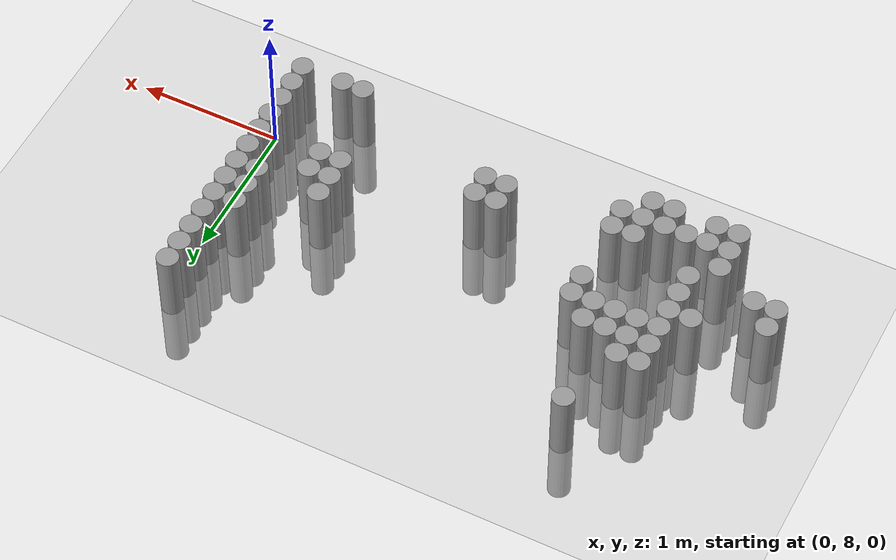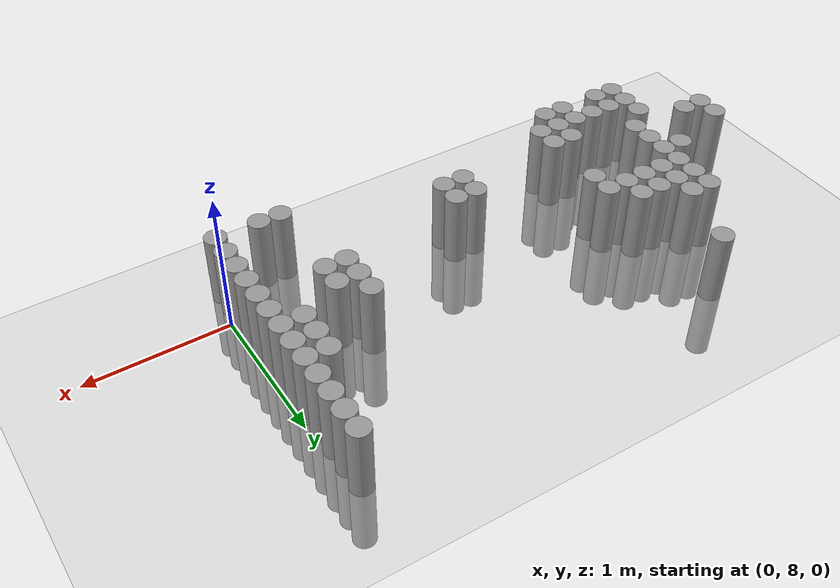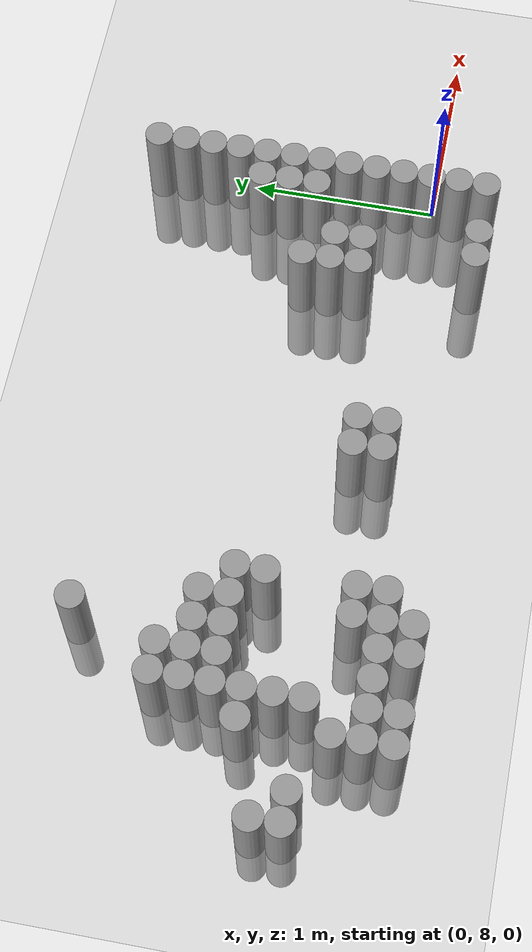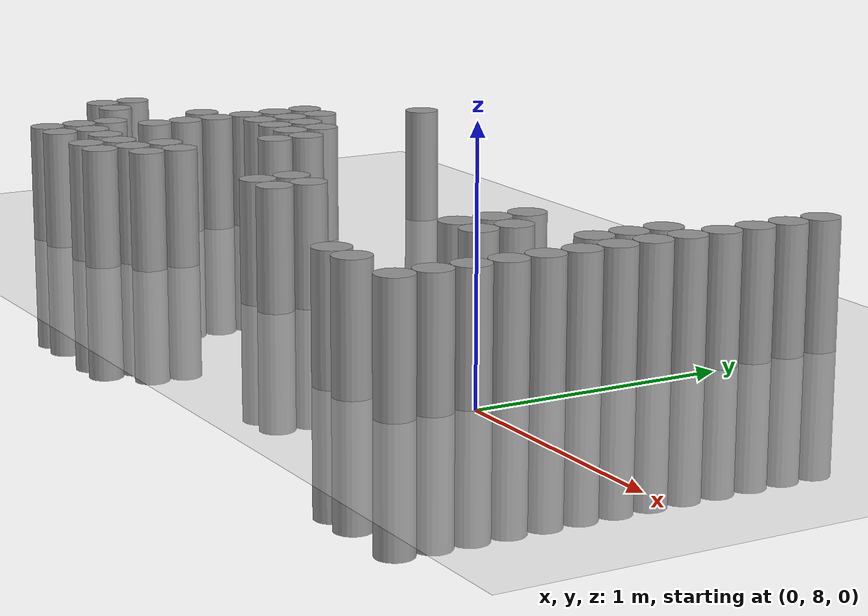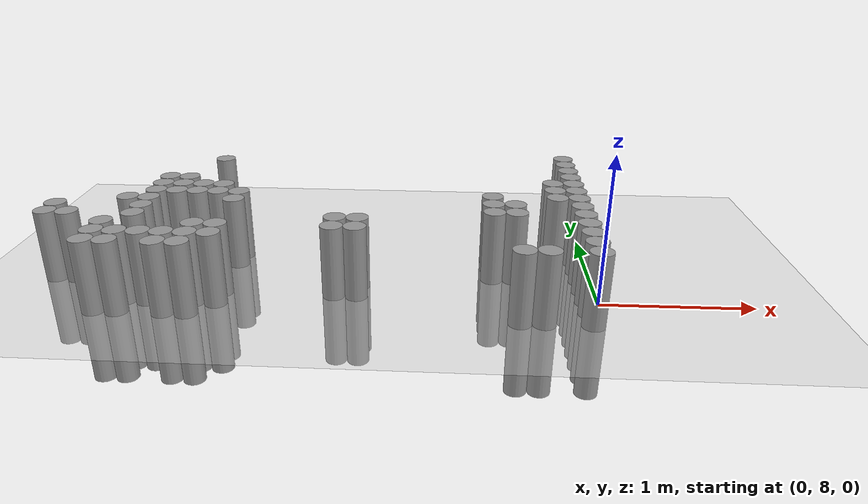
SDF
<sdf version="1.6">
 <world name="default">
  <model name="ground_plane">
   <static>1</static>
   <static>1</static>
   <link name="link">
    <collision name="collision">
     <geometry><plane><normal>0 0 1</normal><size>100 100</size></plane></geometry>
     <surface><friction><ode><mu>100000</mu><mu2>50000</mu2></ode></friction></surface>
    </collision>
    <visual name="visual">
     <cast_shadows>0</cast_shadows>
     <geometry><plane><normal>0 0 1</normal><size>100 100</size></plane></geometry>
     <material>
      <script><uri>file://media/materials/scripts/gazebo.material</uri><name>Gazebo/Grey</name></script>
     </material>
    </visual>
   </link>
  </model>
  <model name="unit_cylinder_165">
   <static>1</static>
   <pose>-3.675000 8.175000 0.000000 0.000000 0.000000 0.000000</pose>
   <link name="link">
    <inertial>
     <mass>1</mass>
     <inertia><ixx>0.145833</ixx><ixy>0</ixy><ixz>0</ixz><iyy>0.145833</iyy><iyz>0</iyz><izz>0.125</izz></inertia>
    </inertial>
    <collision name="collision">
     <geometry><cylinder><radius>0.075000</radius><length>1</length></cylinder></geometry>
    </collision>
    <visual name="visual">
     <geometry><cylinder><radius>0.075000</radius><length>1</length></cylinder></geometry>
     <material>
      <script><name>Gazebo/Grey</name><uri>file://media/materials/scripts/gazebo.material</uri></script>
     </material>
    </visual>
   </link>
  </model>
  <model name="unit_cylinder_166">
   <static>1</static>
   <pose>-3.675000 8.325000 0.000000 0.000000 0.000000 0.000000</pose>
   <link name="link">
    <inertial>
     <mass>1</mass>
     <inertia><ixx>0.145833</ixx><ixy>0</ixy><ixz>0</ixz><iyy>0.145833</iyy><iyz>0</iyz><izz>0.125</izz></inertia>
    </inertial>
    <collision name="collision">
     <geometry><cylinder><radius>0.075000</radius><length>1</length></cylinder></geometry>
    </collision>
    <visual name="visual">
     <geometry><cylinder><radius>0.075000</radius><length>1</length></cylinder></geometry>
     <material>
      <script><name>Gazebo/Grey</name><uri>file://media/materials/scripts/gazebo.material</uri></script>
     </material>
    </visual>
   </link>
  </model>
  <model name="unit_cylinder_168">
   <static>1</static>
   <pose>-3.525000 8.175000 0.000000 0.000000 0.000000 0.000000</pose>
   <link name="link">
    <inertial>
     <mass>1</mass>
     <inertia><ixx>0.145833</ixx><ixy>0</ixy><ixz>0</ixz><iyy>0.145833</iyy><iyz>0</iyz><izz>0.125</izz></inertia>
    </inertial>
    <collision name="collision">
     <geometry><cylinder><radius>0.075000</radius><length>1</length></cylinder></geometry>
    </collision>
    <visual name="visual">
     <geometry><cylinder><radius>0.075000</radius><length>1</length></cylinder></geometry>
     <material>
      <script><name>Gazebo/Grey</name><uri>file://media/materials/scripts/gazebo.material</uri></script>
     </material>
    </visual>
   </link>
  </model>
  <model name="unit_cylinder_172">
   <static>1</static>
   <pose>-3.225000 7.725000 0.000000 0.000000 0.000000 0.000000</pose>
   <link name="link">
    <inertial>
     <mass>1</mass>
     <inertia><ixx>0.145833</ixx><ixy>0</ixy><ixz>0</ixz><iyy>0.145833</iyy><iyz>0</iyz><izz>0.125</izz></inertia>
    </inertial>
    <collision name="collision">
     <geometry><cylinder><radius>0.075000</radius><length>1</length></cylinder></geometry>
    </collision>
    <visual name="visual">
     <geometry><cylinder><radius>0.075000</radius><length>1</length></cylinder></geometry>
     <material>
      <script><name>Gazebo/Grey</name><uri>file://media/materials/scripts/gazebo.material</uri></script>
     </material>
    </visual>
   </link>
  </model>
  <model name="unit_cylinder_173">
   <static>1</static>
   <pose>-3.225000 7.875000 0.000000 0.000000 0.000000 0.000000</pose>
   <link name="link">
    <inertial>
     <mass>1</mass>
     <inertia><ixx>0.145833</ixx><ixy>0</ixy><ixz>0</ixz><iyy>0.145833</iyy><iyz>0</iyz><izz>0.125</izz></inertia>
    </inertial>
    <collision name="collision">
     <geometry><cylinder><radius>0.075000</radius><length>1</length></cylinder></geometry>
    </collision>
    <visual name="visual">
     <geometry><cylinder><radius>0.075000</radius><length>1</length></cylinder></geometry>
     <material>
      <script><name>Gazebo/Grey</name><uri>file://media/materials/scripts/gazebo.material</uri></script>
     </material>
    </visual>
   </link>
  </model>
  <model name="unit_cylinder_174">
   <static>1</static>
   <pose>-3.225000 8.025000 0.000000 0.000000 0.000000 0.000000</pose>
   <link name="link">
    <inertial>
     <mass>1</mass>
     <inertia><ixx>0.145833</ixx><ixy>0</ixy><ixz>0</ixz><iyy>0.145833</iyy><iyz>0</iyz><izz>0.125</izz></inertia>
    </inertial>
    <collision name="collision">
     <geometry><cylinder><radius>0.075000</radius><length>1</length></cylinder></geometry>
    </collision>
    <visual name="visual">
     <geometry><cylinder><radius>0.075000</radius><length>1</length></cylinder></geometry>
     <material>
      <script><name>Gazebo/Grey</name><uri>file://media/materials/scripts/gazebo.material</uri></script>
     </material>
    </visual>
   </link>
  </model>
  <model name="unit_cylinder_175">
   <static>1</static>
   <pose>-3.225000 8.475000 0.000000 0.000000 0.000000 0.000000</pose>
   <link name="link">
    <inertial>
     <mass>1</mass>
     <inertia><ixx>0.145833</ixx><ixy>0</ixy><ixz>0</ixz><iyy>0.145833</iyy><iyz>0</iyz><izz>0.125</izz></inertia>
    </inertial>
    <collision name="collision">
     <geometry><cylinder><radius>0.075000</radius><length>1</length></cylinder></geometry>
    </collision>
    <visual name="visual">
     <geometry><cylinder><radius>0.075000</radius><length>1</length></cylinder></geometry>
     <material>
      <script><name>Gazebo/Grey</name><uri>file://media/materials/scripts/gazebo.material</uri></script>
     </material>
    </visual>
   </link>
  </model>
  <model name="unit_cylinder_180">
   <static>1</static>
   <pose>-3.075000 7.725000 0.000000 0.000000 0.000000 0.000000</pose>
   <link name="link">
    <inertial>
     <mass>1</mass>
     <inertia><ixx>0.145833</ixx><ixy>0</ixy><ixz>0</ixz><iyy>0.145833</iyy><iyz>0</iyz><izz>0.125</izz></inertia>
    </inertial>
    <collision name="collision">
     <geometry><cylinder><radius>0.075000</radius><length>1</length></cylinder></geometry>
    </collision>
    <visual name="visual">
     <geometry><cylinder><radius>0.075000</radius><length>1</length></cylinder></geometry>
     <material>
      <script><name>Gazebo/Grey</name><uri>file://media/materials/scripts/gazebo.material</uri></script>
     </material>
    </visual>
   </link>
  </model>
  <model name="unit_cylinder_181">
   <static>1</static>
   <pose>-3.075000 7.875000 0.000000 0.000000 0.000000 0.000000</pose>
   <link name="link">
    <inertial>
     <mass>1</mass>
     <inertia><ixx>0.145833</ixx><ixy>0</ixy><ixz>0</ixz><iyy>0.145833</iyy><iyz>0</iyz><izz>0.125</izz></inertia>
    </inertial>
    <collision name="collision">
     <geometry><cylinder><radius>0.075000</radius><length>1</length></cylinder></geometry>
    </collision>
    <visual name="visual">
     <geometry><cylinder><radius>0.075000</radius><length>1</length></cylinder></geometry>
     <material>
      <script><name>Gazebo/Grey</name><uri>file://media/materials/scripts/gazebo.material</uri></script>
     </material>
    </visual>
   </link>
  </model>
  <model name="unit_cylinder_182">
   <static>1</static>
   <pose>-3.075000 8.175000 0.000000 0.000000 0.000000 0.000000</pose>
   <link name="link">
    <inertial>
     <mass>1</mass>
     <inertia><ixx>0.145833</ixx><ixy>0</ixy><ixz>0</ixz><iyy>0.145833</iyy><iyz>0</iyz><izz>0.125</izz></inertia>
    </inertial>
    <collision name="collision">
     <geometry><cylinder><radius>0.075000</radius><length>1</length></cylinder></geometry>
    </collision>
    <visual name="visual">
     <geometry><cylinder><radius>0.075000</radius><length>1</length></cylinder></geometry>
     <material>
      <script><name>Gazebo/Grey</name><uri>file://media/materials/scripts/gazebo.material</uri></script>
     </material>
    </visual>
   </link>
  </model>
  <model name="unit_cylinder_183">
   <static>1</static>
   <pose>-3.075000 8.325000 0.000000 0.000000 0.000000 0.000000</pose>
   <link name="link">
    <inertial>
     <mass>1</mass>
     <inertia><ixx>0.145833</ixx><ixy>0</ixy><ixz>0</ixz><iyy>0.145833</iyy><iyz>0</iyz><izz>0.125</izz></inertia>
    </inertial>
    <collision name="collision">
     <geometry><cylinder><radius>0.075000</radius><length>1</length></cylinder></geometry>
    </collision>
    <visual name="visual">
     <geometry><cylinder><radius>0.075000</radius><length>1</length></cylinder></geometry>
     <material>
      <script><name>Gazebo/Grey</name><uri>file://media/materials/scripts/gazebo.material</uri></script>
     </material>
    </visual>
   </link>
  </model>
  <model name="unit_cylinder_184">
   <static>1</static>
   <pose>-3.075000 8.475000 0.000000 0.000000 0.000000 0.000000</pose>
   <link name="link">
    <inertial>
     <mass>1</mass>
     <inertia><ixx>0.145833</ixx><ixy>0</ixy><ixz>0</ixz><iyy>0.145833</iyy><iyz>0</iyz><izz>0.125</izz></inertia>
    </inertial>
    <collision name="collision">
     <geometry><cylinder><radius>0.075000</radius><length>1</length></cylinder></geometry>
    </collision>
    <visual name="visual">
     <geometry><cylinder><radius>0.075000</radius><length>1</length></cylinder></geometry>
     <material>
      <script><name>Gazebo/Grey</name><uri>file://media/materials/scripts/gazebo.material</uri></script>
     </material>
    </visual>
   </link>
  </model>
  <model name="unit_cylinder_185">
   <static>1</static>
   <pose>-3.075000 8.625000 0.000000 0.000000 0.000000 0.000000</pose>
   <link name="link">
    <inertial>
     <mass>1</mass>
     <inertia><ixx>0.145833</ixx><ixy>0</ixy><ixz>0</ixz><iyy>0.145833</iyy><iyz>0</iyz><izz>0.125</izz></inertia>
    </inertial>
    <collision name="collision">
     <geometry><cylinder><radius>0.075000</radius><length>1</length></cylinder></geometry>
    </collision>
    <visual name="visual">
     <geometry><cylinder><radius>0.075000</radius><length>1</length></cylinder></geometry>
     <material>
      <script><name>Gazebo/Grey</name><uri>file://media/materials/scripts/gazebo.material</uri></script>
     </material>
    </visual>
   </link>
  </model>
  <model name="unit_cylinder_186">
   <static>1</static>
   <pose>-3.075000 8.775000 0.000000 0.000000 0.000000 0.000000</pose>
   <link name="link">
    <inertial>
     <mass>1</mass>
     <inertia><ixx>0.145833</ixx><ixy>0</ixy><ixz>0</ixz><iyy>0.145833</iyy><iyz>0</iyz><izz>0.125</izz></inertia>
    </inertial>
    <collision name="collision">
     <geometry><cylinder><radius>0.075000</radius><length>1</length></cylinder></geometry>
    </collision>
    <visual name="visual">
     <geometry><cylinder><radius>0.075000</radius><length>1</length></cylinder></geometry>
     <material>
      <script><name>Gazebo/Grey</name><uri>file://media/materials/scripts/gazebo.material</uri></script>
     </material>
    </visual>
   </link>
  </model>
  <model name="unit_cylinder_187">
   <static>1</static>
   <pose>-3.075000 8.925000 0.000000 0.000000 0.000000 0.000000</pose>
   <link name="link">
    <inertial>
     <mass>1</mass>
     <inertia><ixx>0.145833</ixx><ixy>0</ixy><ixz>0</ixz><iyy>0.145833</iyy><iyz>0</iyz><izz>0.125</izz></inertia>
    </inertial>
    <collision name="collision">
     <geometry><cylinder><radius>0.075000</radius><length>1</length></cylinder></geometry>
    </collision>
    <visual name="visual">
     <geometry><cylinder><radius>0.075000</radius><length>1</length></cylinder></geometry>
     <material>
      <script><name>Gazebo/Grey</name><uri>file://media/materials/scripts/gazebo.material</uri></script>
     </material>
    </visual>
   </link>
  </model>
  <model name="unit_cylinder_193">
   <static>1</static>
   <pose>-2.925000 7.875000 0.000000 0.000000 0.000000 0.000000</pose>
   <link name="link">
    <inertial>
     <mass>1</mass>
     <inertia><ixx>0.145833</ixx><ixy>0</ixy><ixz>0</ixz><iyy>0.145833</iyy><iyz>0</iyz><izz>0.125</izz></inertia>
    </inertial>
    <collision name="collision">
     <geometry><cylinder><radius>0.075000</radius><length>1</length></cylinder></geometry>
    </collision>
    <visual name="visual">
     <geometry><cylinder><radius>0.075000</radius><length>1</length></cylinder></geometry>
     <material>
      <script><name>Gazebo/Grey</name><uri>file://media/materials/scripts/gazebo.material</uri></script>
     </material>
    </visual>
   </link>
  </model>
  <model name="unit_cylinder_194">
   <static>1</static>
   <pose>-2.925000 8.625000 0.000000 0.000000 0.000000 0.000000</pose>
   <link name="link">
    <inertial>
     <mass>1</mass>
     <inertia><ixx>0.145833</ixx><ixy>0</ixy><ixz>0</ixz><iyy>0.145833</iyy><iyz>0</iyz><izz>0.125</izz></inertia>
    </inertial>
    <collision name="collision">
     <geometry><cylinder><radius>0.075000</radius><length>1</length></cylinder></geometry>
    </collision>
    <visual name="visual">
     <geometry><cylinder><radius>0.075000</radius><length>1</length></cylinder></geometry>
     <material>
      <script><name>Gazebo/Grey</name><uri>file://media/materials/scripts/gazebo.material</uri></script>
     </material>
    </visual>
   </link>
  </model>
  <model name="unit_cylinder_195">
   <static>1</static>
   <pose>-2.925000 8.775000 0.000000 0.000000 0.000000 0.000000</pose>
   <link name="link">
    <inertial>
     <mass>1</mass>
     <inertia><ixx>0.145833</ixx><ixy>0</ixy><ixz>0</ixz><iyy>0.145833</iyy><iyz>0</iyz><izz>0.125</izz></inertia>
    </inertial>
    <collision name="collision">
     <geometry><cylinder><radius>0.075000</radius><length>1</length></cylinder></geometry>
    </collision>
    <visual name="visual">
     <geometry><cylinder><radius>0.075000</radius><length>1</length></cylinder></geometry>
     <material>
      <script><name>Gazebo/Grey</name><uri>file://media/materials/scripts/gazebo.material</uri></script>
     </material>
    </visual>
   </link>
  </model>
  <model name="unit_cylinder_196">
   <static>1</static>
   <pose>-2.925000 8.925000 0.000000 0.000000 0.000000 0.000000</pose>
   <link name="link">
    <inertial>
     <mass>1</mass>
     <inertia><ixx>0.145833</ixx><ixy>0</ixy><ixz>0</ixz><iyy>0.145833</iyy><iyz>0</iyz><izz>0.125</izz></inertia>
    </inertial>
    <collision name="collision">
     <geometry><cylinder><radius>0.075000</radius><length>1</length></cylinder></geometry>
    </collision>
    <visual name="visual">
     <geometry><cylinder><radius>0.075000</radius><length>1</length></cylinder></geometry>
     <material>
      <script><name>Gazebo/Grey</name><uri>file://media/materials/scripts/gazebo.material</uri></script>
     </material>
    </visual>
   </link>
  </model>
  <model name="unit_cylinder_203">
   <static>1</static>
   <pose>-2.775000 7.725000 0.000000 0.000000 0.000000 0.000000</pose>
   <link name="link">
    <inertial>
     <mass>1</mass>
     <inertia><ixx>0.145833</ixx><ixy>0</ixy><ixz>0</ixz><iyy>0.145833</iyy><iyz>0</iyz><izz>0.125</izz></inertia>
    </inertial>
    <collision name="collision">
     <geometry><cylinder><radius>0.075000</radius><length>1</length></cylinder></geometry>
    </collision>
    <visual name="visual">
     <geometry><cylinder><radius>0.075000</radius><length>1</length></cylinder></geometry>
     <material>
      <script><name>Gazebo/Grey</name><uri>file://media/materials/scripts/gazebo.material</uri></script>
     </material>
    </visual>
   </link>
  </model>
  <model name="unit_cylinder_204">
   <static>1</static>
   <pose>-2.775000 7.875000 0.000000 0.000000 0.000000 0.000000</pose>
   <link name="link">
    <inertial>
     <mass>1</mass>
     <inertia><ixx>0.145833</ixx><ixy>0</ixy><ixz>0</ixz><iyy>0.145833</iyy><iyz>0</iyz><izz>0.125</izz></inertia>
    </inertial>
    <collision name="collision">
     <geometry><cylinder><radius>0.075000</radius><length>1</length></cylinder></geometry>
    </collision>
    <visual name="visual">
     <geometry><cylinder><radius>0.075000</radius><length>1</length></cylinder></geometry>
     <material>
      <script><name>Gazebo/Grey</name><uri>file://media/materials/scripts/gazebo.material</uri></script>
     </material>
    </visual>
   </link>
  </model>
  <model name="unit_cylinder_205">
   <static>1</static>
   <pose>-2.775000 8.625000 0.000000 0.000000 0.000000 0.000000</pose>
   <link name="link">
    <inertial>
     <mass>1</mass>
     <inertia><ixx>0.145833</ixx><ixy>0</ixy><ixz>0</ixz><iyy>0.145833</iyy><iyz>0</iyz><izz>0.125</izz></inertia>
    </inertial>
    <collision name="collision">
     <geometry><cylinder><radius>0.075000</radius><length>1</length></cylinder></geometry>
    </collision>
    <visual name="visual">
     <geometry><cylinder><radius>0.075000</radius><length>1</length></cylinder></geometry>
     <material>
      <script><name>Gazebo/Grey</name><uri>file://media/materials/scripts/gazebo.material</uri></script>
     </material>
    </visual>
   </link>
  </model>
  <model name="unit_cylinder_206">
   <static>1</static>
   <pose>-2.775000 8.775000 0.000000 0.000000 0.000000 0.000000</pose>
   <link name="link">
    <inertial>
     <mass>1</mass>
     <inertia><ixx>0.145833</ixx><ixy>0</ixy><ixz>0</ixz><iyy>0.145833</iyy><iyz>0</iyz><izz>0.125</izz></inertia>
    </inertial>
    <collision name="collision">
     <geometry><cylinder><radius>0.075000</radius><length>1</length></cylinder></geometry>
    </collision>
    <visual name="visual">
     <geometry><cylinder><radius>0.075000</radius><length>1</length></cylinder></geometry>
     <material>
      <script><name>Gazebo/Grey</name><uri>file://media/materials/scripts/gazebo.material</uri></script>
     </material>
    </visual>
   </link>
  </model>
  <model name="unit_cylinder_207">
   <static>1</static>
   <pose>-2.775000 9.375000 0.000000 0.000000 0.000000 0.000000</pose>
   <link name="link">
    <inertial>
     <mass>1</mass>
     <inertia><ixx>0.145833</ixx><ixy>0</ixy><ixz>0</ixz><iyy>0.145833</iyy><iyz>0</iyz><izz>0.125</izz></inertia>
    </inertial>
    <collision name="collision">
     <geometry><cylinder><radius>0.075000</radius><length>1</length></cylinder></geometry>
    </collision>
    <visual name="visual">
     <geometry><cylinder><radius>0.075000</radius><length>1</length></cylinder></geometry>
     <material>
      <script><name>Gazebo/Grey</name><uri>file://media/materials/scripts/gazebo.material</uri></script>
     </material>
    </visual>
   </link>
  </model>
  <model name="unit_cylinder_209">
   <static>1</static>
   <pose>-2.625000 7.725000 0.000000 0.000000 0.000000 0.000000</pose>
   <link name="link">
    <inertial>
     <mass>1</mass>
     <inertia><ixx>0.145833</ixx><ixy>0</ixy><ixz>0</ixz><iyy>0.145833</iyy><iyz>0</iyz><izz>0.125</izz></inertia>
    </inertial>
    <collision name="collision">
     <geometry><cylinder><radius>0.075000</radius><length>1</length></cylinder></geometry>
    </collision>
    <visual name="visual">
     <geometry><cylinder><radius>0.075000</radius><length>1</length></cylinder></geometry>
     <material>
      <script><name>Gazebo/Grey</name><uri>file://media/materials/scripts/gazebo.material</uri></script>
     </material>
    </visual>
   </link>
  </model>
  <model name="unit_cylinder_210">
   <static>1</static>
   <pose>-2.625000 7.875000 0.000000 0.000000 0.000000 0.000000</pose>
   <link name="link">
    <inertial>
     <mass>1</mass>
     <inertia><ixx>0.145833</ixx><ixy>0</ixy><ixz>0</ixz><iyy>0.145833</iyy><iyz>0</iyz><izz>0.125</izz></inertia>
    </inertial>
    <collision name="collision">
     <geometry><cylinder><radius>0.075000</radius><length>1</length></cylinder></geometry>
    </collision>
    <visual name="visual">
     <geometry><cylinder><radius>0.075000</radius><length>1</length></cylinder></geometry>
     <material>
      <script><name>Gazebo/Grey</name><uri>file://media/materials/scripts/gazebo.material</uri></script>
     </material>
    </visual>
   </link>
  </model>
  <model name="unit_cylinder_211">
   <static>1</static>
   <pose>-2.625000 8.025000 0.000000 0.000000 0.000000 0.000000</pose>
   <link name="link">
    <inertial>
     <mass>1</mass>
     <inertia><ixx>0.145833</ixx><ixy>0</ixy><ixz>0</ixz><iyy>0.145833</iyy><iyz>0</iyz><izz>0.125</izz></inertia>
    </inertial>
    <collision name="collision">
     <geometry><cylinder><radius>0.075000</radius><length>1</length></cylinder></geometry>
    </collision>
    <visual name="visual">
     <geometry><cylinder><radius>0.075000</radius><length>1</length></cylinder></geometry>
     <material>
      <script><name>Gazebo/Grey</name><uri>file://media/materials/scripts/gazebo.material</uri></script>
     </material>
    </visual>
   </link>
  </model>
  <model name="unit_cylinder_212">
   <static>1</static>
   <pose>-2.625000 8.625000 0.000000 0.000000 0.000000 0.000000</pose>
   <link name="link">
    <inertial>
     <mass>1</mass>
     <inertia><ixx>0.145833</ixx><ixy>0</ixy><ixz>0</ixz><iyy>0.145833</iyy><iyz>0</iyz><izz>0.125</izz></inertia>
    </inertial>
    <collision name="collision">
     <geometry><cylinder><radius>0.075000</radius><length>1</length></cylinder></geometry>
    </collision>
    <visual name="visual">
     <geometry><cylinder><radius>0.075000</radius><length>1</length></cylinder></geometry>
     <material>
      <script><name>Gazebo/Grey</name><uri>file://media/materials/scripts/gazebo.material</uri></script>
     </material>
    </visual>
   </link>
  </model>
  <model name="unit_cylinder_213">
   <static>1</static>
   <pose>-2.625000 8.775000 0.000000 0.000000 0.000000 0.000000</pose>
   <link name="link">
    <inertial>
     <mass>1</mass>
     <inertia><ixx>0.145833</ixx><ixy>0</ixy><ixz>0</ixz><iyy>0.145833</iyy><iyz>0</iyz><izz>0.125</izz></inertia>
    </inertial>
    <collision name="collision">
     <geometry><cylinder><radius>0.075000</radius><length>1</length></cylinder></geometry>
    </collision>
    <visual name="visual">
     <geometry><cylinder><radius>0.075000</radius><length>1</length></cylinder></geometry>
     <material>
      <script><name>Gazebo/Grey</name><uri>file://media/materials/scripts/gazebo.material</uri></script>
     </material>
    </visual>
   </link>
  </model>
  <model name="unit_cylinder_214">
   <static>1</static>
   <pose>-2.475000 7.875000 0.000000 0.000000 0.000000 0.000000</pose>
   <link name="link">
    <inertial>
     <mass>1</mass>
     <inertia><ixx>0.145833</ixx><ixy>0</ixy><ixz>0</ixz><iyy>0.145833</iyy><iyz>0</iyz><izz>0.125</izz></inertia>
    </inertial>
    <collision name="collision">
     <geometry><cylinder><radius>0.075000</radius><length>1</length></cylinder></geometry>
    </collision>
    <visual name="visual">
     <geometry><cylinder><radius>0.075000</radius><length>1</length></cylinder></geometry>
     <material>
      <script><name>Gazebo/Grey</name><uri>file://media/materials/scripts/gazebo.material</uri></script>
     </material>
    </visual>
   </link>
  </model>
  <model name="unit_cylinder_215">
   <static>1</static>
   <pose>-2.475000 8.025000 0.000000 0.000000 0.000000 0.000000</pose>
   <link name="link">
    <inertial>
     <mass>1</mass>
     <inertia><ixx>0.145833</ixx><ixy>0</ixy><ixz>0</ixz><iyy>0.145833</iyy><iyz>0</iyz><izz>0.125</izz></inertia>
    </inertial>
    <collision name="collision">
     <geometry><cylinder><radius>0.075000</radius><length>1</length></cylinder></geometry>
    </collision>
    <visual name="visual">
     <geometry><cylinder><radius>0.075000</radius><length>1</length></cylinder></geometry>
     <material>
      <script><name>Gazebo/Grey</name><uri>file://media/materials/scripts/gazebo.material</uri></script>
     </material>
    </visual>
   </link>
  </model>
  <model name="unit_cylinder_216">
   <static>1</static>
   <pose>-2.475000 8.475000 0.000000 0.000000 0.000000 0.000000</pose>
   <link name="link">
    <inertial>
     <mass>1</mass>
     <inertia><ixx>0.145833</ixx><ixy>0</ixy><ixz>0</ixz><iyy>0.145833</iyy><iyz>0</iyz><izz>0.125</izz></inertia>
    </inertial>
    <collision name="collision">
     <geometry><cylinder><radius>0.075000</radius><length>1</length></cylinder></geometry>
    </collision>
    <visual name="visual">
     <geometry><cylinder><radius>0.075000</radius><length>1</length></cylinder></geometry>
     <material>
      <script><name>Gazebo/Grey</name><uri>file://media/materials/scripts/gazebo.material</uri></script>
     </material>
    </visual>
   </link>
  </model>
  <model name="unit_cylinder_217">
   <static>1</static>
   <pose>-2.475000 8.625000 0.000000 0.000000 0.000000 0.000000</pose>
   <link name="link">
    <inertial>
     <mass>1</mass>
     <inertia><ixx>0.145833</ixx><ixy>0</ixy><ixz>0</ixz><iyy>0.145833</iyy><iyz>0</iyz><izz>0.125</izz></inertia>
    </inertial>
    <collision name="collision">
     <geometry><cylinder><radius>0.075000</radius><length>1</length></cylinder></geometry>
    </collision>
    <visual name="visual">
     <geometry><cylinder><radius>0.075000</radius><length>1</length></cylinder></geometry>
     <material>
      <script><name>Gazebo/Grey</name><uri>file://media/materials/scripts/gazebo.material</uri></script>
     </material>
    </visual>
   </link>
  </model>
  <model name="unit_cylinder_232">
   <static>1</static>
   <pose>-1.725000 8.025000 0.000000 0.000000 0.000000 0.000000</pose>
   <link name="link">
    <inertial>
     <mass>1</mass>
     <inertia><ixx>0.145833</ixx><ixy>0</ixy><ixz>0</ixz><iyy>0.145833</iyy><iyz>0</iyz><izz>0.125</izz></inertia>
    </inertial>
    <collision name="collision">
     <geometry><cylinder><radius>0.075000</radius><length>1</length></cylinder></geometry>
    </collision>
    <visual name="visual">
     <geometry><cylinder><radius>0.075000</radius><length>1</length></cylinder></geometry>
     <material>
      <script><name>Gazebo/Grey</name><uri>file://media/materials/scripts/gazebo.material</uri></script>
     </material>
    </visual>
   </link>
  </model>
  <model name="unit_cylinder_233">
   <static>1</static>
   <pose>-1.725000 8.175000 0.000000 0.000000 0.000000 0.000000</pose>
   <link name="link">
    <inertial>
     <mass>1</mass>
     <inertia><ixx>0.145833</ixx><ixy>0</ixy><ixz>0</ixz><iyy>0.145833</iyy><iyz>0</iyz><izz>0.125</izz></inertia>
    </inertial>
    <collision name="collision">
     <geometry><cylinder><radius>0.075000</radius><length>1</length></cylinder></geometry>
    </collision>
    <visual name="visual">
     <geometry><cylinder><radius>0.075000</radius><length>1</length></cylinder></geometry>
     <material>
      <script><name>Gazebo/Grey</name><uri>file://media/materials/scripts/gazebo.material</uri></script>
     </material>
    </visual>
   </link>
  </model>
  <model name="unit_cylinder_236">
   <static>1</static>
   <pose>-1.575000 8.025000 0.000000 0.000000 0.000000 0.000000</pose>
   <link name="link">
    <inertial>
     <mass>1</mass>
     <inertia><ixx>0.145833</ixx><ixy>0</ixy><ixz>0</ixz><iyy>0.145833</iyy><iyz>0</iyz><izz>0.125</izz></inertia>
    </inertial>
    <collision name="collision">
     <geometry><cylinder><radius>0.075000</radius><length>1</length></cylinder></geometry>
    </collision>
    <visual name="visual">
     <geometry><cylinder><radius>0.075000</radius><length>1</length></cylinder></geometry>
     <material>
      <script><name>Gazebo/Grey</name><uri>file://media/materials/scripts/gazebo.material</uri></script>
     </material>
    </visual>
   </link>
  </model>
  <model name="unit_cylinder_237">
   <static>1</static>
   <pose>-1.575000 8.175000 0.000000 0.000000 0.000000 0.000000</pose>
   <link name="link">
    <inertial>
     <mass>1</mass>
     <inertia><ixx>0.145833</ixx><ixy>0</ixy><ixz>0</ixz><iyy>0.145833</iyy><iyz>0</iyz><izz>0.125</izz></inertia>
    </inertial>
    <collision name="collision">
     <geometry><cylinder><radius>0.075000</radius><length>1</length></cylinder></geometry>
    </collision>
    <visual name="visual">
     <geometry><cylinder><radius>0.075000</radius><length>1</length></cylinder></geometry>
     <material>
      <script><name>Gazebo/Grey</name><uri>file://media/materials/scripts/gazebo.material</uri></script>
     </material>
    </visual>
   </link>
  </model>
  <model name="unit_cylinder_244">
   <static>1</static>
   <pose>-0.675000 8.325000 0.000000 0.000000 0.000000 0.000000</pose>
   <link name="link">
    <inertial>
     <mass>1</mass>
     <inertia><ixx>0.145833</ixx><ixy>0</ixy><ixz>0</ixz><iyy>0.145833</iyy><iyz>0</iyz><izz>0.125</izz></inertia>
    </inertial>
    <collision name="collision">
     <geometry><cylinder><radius>0.075000</radius><length>1</length></cylinder></geometry>
    </collision>
    <visual name="visual">
     <geometry><cylinder><radius>0.075000</radius><length>1</length></cylinder></geometry>
     <material>
      <script><name>Gazebo/Grey</name><uri>file://media/materials/scripts/gazebo.material</uri></script>
     </material>
    </visual>
   </link>
  </model>
  <model name="unit_cylinder_245">
   <static>1</static>
   <pose>-0.675000 8.475000 0.000000 0.000000 0.000000 0.000000</pose>
   <link name="link">
    <inertial>
     <mass>1</mass>
     <inertia><ixx>0.145833</ixx><ixy>0</ixy><ixz>0</ixz><iyy>0.145833</iyy><iyz>0</iyz><izz>0.125</izz></inertia>
    </inertial>
    <collision name="collision">
     <geometry><cylinder><radius>0.075000</radius><length>1</length></cylinder></geometry>
    </collision>
    <visual name="visual">
     <geometry><cylinder><radius>0.075000</radius><length>1</length></cylinder></geometry>
     <material>
      <script><name>Gazebo/Grey</name><uri>file://media/materials/scripts/gazebo.material</uri></script>
     </material>
    </visual>
   </link>
  </model>
  <model name="unit_cylinder_246">
   <static>1</static>
   <pose>-0.675000 8.625000 0.000000 0.000000 0.000000 0.000000</pose>
   <link name="link">
    <inertial>
     <mass>1</mass>
     <inertia><ixx>0.145833</ixx><ixy>0</ixy><ixz>0</ixz><iyy>0.145833</iyy><iyz>0</iyz><izz>0.125</izz></inertia>
    </inertial>
    <collision name="collision">
     <geometry><cylinder><radius>0.075000</radius><length>1</length></cylinder></geometry>
    </collision>
    <visual name="visual">
     <geometry><cylinder><radius>0.075000</radius><length>1</length></cylinder></geometry>
     <material>
      <script><name>Gazebo/Grey</name><uri>file://media/materials/scripts/gazebo.material</uri></script>
     </material>
    </visual>
   </link>
  </model>
  <model name="unit_cylinder_253">
   <static>1</static>
   <pose>-0.525000 7.725000 0.000000 0.000000 0.000000 0.000000</pose>
   <link name="link">
    <inertial>
     <mass>1</mass>
     <inertia><ixx>0.145833</ixx><ixy>0</ixy><ixz>0</ixz><iyy>0.145833</iyy><iyz>0</iyz><izz>0.125</izz></inertia>
    </inertial>
    <collision name="collision">
     <geometry><cylinder><radius>0.075000</radius><length>1</length></cylinder></geometry>
    </collision>
    <visual name="visual">
     <geometry><cylinder><radius>0.075000</radius><length>1</length></cylinder></geometry>
     <material>
      <script><name>Gazebo/Grey</name><uri>file://media/materials/scripts/gazebo.material</uri></script>
     </material>
    </visual>
   </link>
  </model>
  <model name="unit_cylinder_254">
   <static>1</static>
   <pose>-0.525000 8.325000 0.000000 0.000000 0.000000 0.000000</pose>
   <link name="link">
    <inertial>
     <mass>1</mass>
     <inertia><ixx>0.145833</ixx><ixy>0</ixy><ixz>0</ixz><iyy>0.145833</iyy><iyz>0</iyz><izz>0.125</izz></inertia>
    </inertial>
    <collision name="collision">
     <geometry><cylinder><radius>0.075000</radius><length>1</length></cylinder></geometry>
    </collision>
    <visual name="visual">
     <geometry><cylinder><radius>0.075000</radius><length>1</length></cylinder></geometry>
     <material>
      <script><name>Gazebo/Grey</name><uri>file://media/materials/scripts/gazebo.material</uri></script>
     </material>
    </visual>
   </link>
  </model>
  <model name="unit_cylinder_255">
   <static>1</static>
   <pose>-0.525000 8.475000 0.000000 0.000000 0.000000 0.000000</pose>
   <link name="link">
    <inertial>
     <mass>1</mass>
     <inertia><ixx>0.145833</ixx><ixy>0</ixy><ixz>0</ixz><iyy>0.145833</iyy><iyz>0</iyz><izz>0.125</izz></inertia>
    </inertial>
    <collision name="collision">
     <geometry><cylinder><radius>0.075000</radius><length>1</length></cylinder></geometry>
    </collision>
    <visual name="visual">
     <geometry><cylinder><radius>0.075000</radius><length>1</length></cylinder></geometry>
     <material>
      <script><name>Gazebo/Grey</name><uri>file://media/materials/scripts/gazebo.material</uri></script>
     </material>
    </visual>
   </link>
  </model>
  <model name="unit_cylinder_261">
   <static>1</static>
   <pose>-0.375000 7.725000 0.000000 0.000000 0.000000 0.000000</pose>
   <link name="link">
    <inertial>
     <mass>1</mass>
     <inertia><ixx>0.145833</ixx><ixy>0</ixy><ixz>0</ixz><iyy>0.145833</iyy><iyz>0</iyz><izz>0.125</izz></inertia>
    </inertial>
    <collision name="collision">
     <geometry><cylinder><radius>0.075000</radius><length>1</length></cylinder></geometry>
    </collision>
    <visual name="visual">
     <geometry><cylinder><radius>0.075000</radius><length>1</length></cylinder></geometry>
     <material>
      <script><name>Gazebo/Grey</name><uri>file://media/materials/scripts/gazebo.material</uri></script>
     </material>
    </visual>
   </link>
  </model>
  <model name="unit_cylinder_268">
   <static>1</static>
   <pose>-0.225000 8.625000 0.000000 0.000000 0.000000 0.000000</pose>
   <link name="link">
    <inertial>
     <mass>1</mass>
     <inertia><ixx>0.145833</ixx><ixy>0</ixy><ixz>0</ixz><iyy>0.145833</iyy><iyz>0</iyz><izz>0.125</izz></inertia>
    </inertial>
    <collision name="collision">
     <geometry><cylinder><radius>0.075000</radius><length>1</length></cylinder></geometry>
    </collision>
    <visual name="visual">
     <geometry><cylinder><radius>0.075000</radius><length>1</length></cylinder></geometry>
     <material>
      <script><name>Gazebo/Grey</name><uri>file://media/materials/scripts/gazebo.material</uri></script>
     </material>
    </visual>
   </link>
  </model>
  <model name="unit_cylinder_269">
   <static>1</static>
   <pose>-0.225000 8.775000 0.000000 0.000000 0.000000 0.000000</pose>
   <link name="link">
    <inertial>
     <mass>1</mass>
     <inertia><ixx>0.145833</ixx><ixy>0</ixy><ixz>0</ixz><iyy>0.145833</iyy><iyz>0</iyz><izz>0.125</izz></inertia>
    </inertial>
    <collision name="collision">
     <geometry><cylinder><radius>0.075000</radius><length>1</length></cylinder></geometry>
    </collision>
    <visual name="visual">
     <geometry><cylinder><radius>0.075000</radius><length>1</length></cylinder></geometry>
     <material>
      <script><name>Gazebo/Grey</name><uri>file://media/materials/scripts/gazebo.material</uri></script>
     </material>
    </visual>
   </link>
  </model>
  <model name="unit_cylinder_270">
   <static>1</static>
   <pose>-0.225000 8.925000 0.000000 0.000000 0.000000 0.000000</pose>
   <link name="link">
    <inertial>
     <mass>1</mass>
     <inertia><ixx>0.145833</ixx><ixy>0</ixy><ixz>0</ixz><iyy>0.145833</iyy><iyz>0</iyz><izz>0.125</izz></inertia>
    </inertial>
    <collision name="collision">
     <geometry><cylinder><radius>0.075000</radius><length>1</length></cylinder></geometry>
    </collision>
    <visual name="visual">
     <geometry><cylinder><radius>0.075000</radius><length>1</length></cylinder></geometry>
     <material>
      <script><name>Gazebo/Grey</name><uri>file://media/materials/scripts/gazebo.material</uri></script>
     </material>
    </visual>
   </link>
  </model>
  <model name="unit_cylinder_288">
   <static>1</static>
   <pose>-0.075000 7.725000 0.000000 0.000000 0.000000 0.000000</pose>
   <link name="link">
    <inertial>
     <mass>1</mass>
     <inertia><ixx>0.145833</ixx><ixy>0</ixy><ixz>0</ixz><iyy>0.145833</iyy><iyz>0</iyz><izz>0.125</izz></inertia>
    </inertial>
    <collision name="collision">
     <geometry><cylinder><radius>0.075000</radius><length>1</length></cylinder></geometry>
    </collision>
    <visual name="visual">
     <geometry><cylinder><radius>0.075000</radius><length>1</length></cylinder></geometry>
     <material>
      <script><name>Gazebo/Grey</name><uri>file://media/materials/scripts/gazebo.material</uri></script>
     </material>
    </visual>
   </link>
  </model>
  <model name="unit_cylinder_289">
   <static>1</static>
   <pose>-0.075000 7.875000 0.000000 0.000000 0.000000 0.000000</pose>
   <link name="link">
    <inertial>
     <mass>1</mass>
     <inertia><ixx>0.145833</ixx><ixy>0</ixy><ixz>0</ixz><iyy>0.145833</iyy><iyz>0</iyz><izz>0.125</izz></inertia>
    </inertial>
    <collision name="collision">
     <geometry><cylinder><radius>0.075000</radius><length>1</length></cylinder></geometry>
    </collision>
    <visual name="visual">
     <geometry><cylinder><radius>0.075000</radius><length>1</length></cylinder></geometry>
     <material>
      <script><name>Gazebo/Grey</name><uri>file://media/materials/scripts/gazebo.material</uri></script>
     </material>
    </visual>
   </link>
  </model>
  <model name="unit_cylinder_290">
   <static>1</static>
   <pose>-0.075000 8.025000 0.000000 0.000000 0.000000 0.000000</pose>
   <link name="link">
    <inertial>
     <mass>1</mass>
     <inertia><ixx>0.145833</ixx><ixy>0</ixy><ixz>0</ixz><iyy>0.145833</iyy><iyz>0</iyz><izz>0.125</izz></inertia>
    </inertial>
    <collision name="collision">
     <geometry><cylinder><radius>0.075000</radius><length>1</length></cylinder></geometry>
    </collision>
    <visual name="visual">
     <geometry><cylinder><radius>0.075000</radius><length>1</length></cylinder></geometry>
     <material>
      <script><name>Gazebo/Grey</name><uri>file://media/materials/scripts/gazebo.material</uri></script>
     </material>
    </visual>
   </link>
  </model>
  <model name="unit_cylinder_291">
   <static>1</static>
   <pose>-0.075000 8.175000 0.000000 0.000000 0.000000 0.000000</pose>
   <link name="link">
    <inertial>
     <mass>1</mass>
     <inertia><ixx>0.145833</ixx><ixy>0</ixy><ixz>0</ixz><iyy>0.145833</iyy><iyz>0</iyz><izz>0.125</izz></inertia>
    </inertial>
    <collision name="collision">
     <geometry><cylinder><radius>0.075000</radius><length>1</length></cylinder></geometry>
    </collision>
    <visual name="visual">
     <geometry><cylinder><radius>0.075000</radius><length>1</length></cylinder></geometry>
     <material>
      <script><name>Gazebo/Grey</name><uri>file://media/materials/scripts/gazebo.material</uri></script>
     </material>
    </visual>
   </link>
  </model>
  <model name="unit_cylinder_292">
   <static>1</static>
   <pose>-0.075000 8.325000 0.000000 0.000000 0.000000 0.000000</pose>
   <link name="link">
    <inertial>
     <mass>1</mass>
     <inertia><ixx>0.145833</ixx><ixy>0</ixy><ixz>0</ixz><iyy>0.145833</iyy><iyz>0</iyz><izz>0.125</izz></inertia>
    </inertial>
    <collision name="collision">
     <geometry><cylinder><radius>0.075000</radius><length>1</length></cylinder></geometry>
    </collision>
    <visual name="visual">
     <geometry><cylinder><radius>0.075000</radius><length>1</length></cylinder></geometry>
     <material>
      <script><name>Gazebo/Grey</name><uri>file://media/materials/scripts/gazebo.material</uri></script>
     </material>
    </visual>
   </link>
  </model>
  <model name="unit_cylinder_293">
   <static>1</static>
   <pose>-0.075000 8.475000 0.000000 0.000000 0.000000 0.000000</pose>
   <link name="link">
    <inertial>
     <mass>1</mass>
     <inertia><ixx>0.145833</ixx><ixy>0</ixy><ixz>0</ixz><iyy>0.145833</iyy><iyz>0</iyz><izz>0.125</izz></inertia>
    </inertial>
    <collision name="collision">
     <geometry><cylinder><radius>0.075000</radius><length>1</length></cylinder></geometry>
    </collision>
    <visual name="visual">
     <geometry><cylinder><radius>0.075000</radius><length>1</length></cylinder></geometry>
     <material>
      <script><name>Gazebo/Grey</name><uri>file://media/materials/scripts/gazebo.material</uri></script>
     </material>
    </visual>
   </link>
  </model>
  <model name="unit_cylinder_294">
   <static>1</static>
   <pose>-0.075000 8.625000 0.000000 0.000000 0.000000 0.000000</pose>
   <link name="link">
    <inertial>
     <mass>1</mass>
     <inertia><ixx>0.145833</ixx><ixy>0</ixy><ixz>0</ixz><iyy>0.145833</iyy><iyz>0</iyz><izz>0.125</izz></inertia>
    </inertial>
    <collision name="collision">
     <geometry><cylinder><radius>0.075000</radius><length>1</length></cylinder></geometry>
    </collision>
    <visual name="visual">
     <geometry><cylinder><radius>0.075000</radius><length>1</length></cylinder></geometry>
     <material>
      <script><name>Gazebo/Grey</name><uri>file://media/materials/scripts/gazebo.material</uri></script>
     </material>
    </visual>
   </link>
  </model>
  <model name="unit_cylinder_295">
   <static>1</static>
   <pose>-0.075000 8.775000 0.000000 0.000000 0.000000 0.000000</pose>
   <link name="link">
    <inertial>
     <mass>1</mass>
     <inertia><ixx>0.145833</ixx><ixy>0</ixy><ixz>0</ixz><iyy>0.145833</iyy><iyz>0</iyz><izz>0.125</izz></inertia>
    </inertial>
    <collision name="collision">
     <geometry><cylinder><radius>0.075000</radius><length>1</length></cylinder></geometry>
    </collision>
    <visual name="visual">
     <geometry><cylinder><radius>0.075000</radius><length>1</length></cylinder></geometry>
     <material>
      <script><name>Gazebo/Grey</name><uri>file://media/materials/scripts/gazebo.material</uri></script>
     </material>
    </visual>
   </link>
  </model>
  <model name="unit_cylinder_296">
   <static>1</static>
   <pose>-0.075000 8.925000 0.000000 0.000000 0.000000 0.000000</pose>
   <link name="link">
    <inertial>
     <mass>1</mass>
     <inertia><ixx>0.145833</ixx><ixy>0</ixy><ixz>0</ixz><iyy>0.145833</iyy><iyz>0</iyz><izz>0.125</izz></inertia>
    </inertial>
    <collision name="collision">
     <geometry><cylinder><radius>0.075000</radius><length>1</length></cylinder></geometry>
    </collision>
    <visual name="visual">
     <geometry><cylinder><radius>0.075000</radius><length>1</length></cylinder></geometry>
     <material>
      <script><name>Gazebo/Grey</name><uri>file://media/materials/scripts/gazebo.material</uri></script>
     </material>
    </visual>
   </link>
  </model>
  <model name="unit_cylinder_297">
   <static>1</static>
   <pose>-0.075000 9.075000 0.000000 0.000000 0.000000 0.000000</pose>
   <link name="link">
    <inertial>
     <mass>1</mass>
     <inertia><ixx>0.145833</ixx><ixy>0</ixy><ixz>0</ixz><iyy>0.145833</iyy><iyz>0</iyz><izz>0.125</izz></inertia>
    </inertial>
    <collision name="collision">
     <geometry><cylinder><radius>0.075000</radius><length>1</length></cylinder></geometry>
    </collision>
    <visual name="visual">
     <geometry><cylinder><radius>0.075000</radius><length>1</length></cylinder></geometry>
     <material>
      <script><name>Gazebo/Grey</name><uri>file://media/materials/scripts/gazebo.material</uri></script>
     </material>
    </visual>
   </link>
  </model>
  <model name="unit_cylinder_298">
   <static>1</static>
   <pose>-0.075000 9.225000 0.000000 0.000000 0.000000 0.000000</pose>
   <link name="link">
    <inertial>
     <mass>1</mass>
     <inertia><ixx>0.145833</ixx><ixy>0</ixy><ixz>0</ixz><iyy>0.145833</iyy><iyz>0</iyz><izz>0.125</izz></inertia>
    </inertial>
    <collision name="collision">
     <geometry><cylinder><radius>0.075000</radius><length>1</length></cylinder></geometry>
    </collision>
    <visual name="visual">
     <geometry><cylinder><radius>0.075000</radius><length>1</length></cylinder></geometry>
     <material>
      <script><name>Gazebo/Grey</name><uri>file://media/materials/scripts/gazebo.material</uri></script>
     </material>
    </visual>
   </link>
  </model>
  <model name="unit_cylinder_299">
   <static>1</static>
   <pose>-0.075000 9.375000 0.000000 0.000000 0.000000 0.000000</pose>
   <link name="link">
    <inertial>
     <mass>1</mass>
     <inertia><ixx>0.145833</ixx><ixy>0</ixy><ixz>0</ixz><iyy>0.145833</iyy><iyz>0</iyz><izz>0.125</izz></inertia>
    </inertial>
    <collision name="collision">
     <geometry><cylinder><radius>0.075000</radius><length>1</length></cylinder></geometry>
    </collision>
    <visual name="visual">
     <geometry><cylinder><radius>0.075000</radius><length>1</length></cylinder></geometry>
     <material>
      <script><name>Gazebo/Grey</name><uri>file://media/materials/scripts/gazebo.material</uri></script>
     </material>
    </visual>
   </link>
  </model>
  <model name="unit_cylinder_300">
   <static>1</static>
   <pose>-0.075000 9.525000 0.000000 0.000000 0.000000 0.000000</pose>
   <link name="link">
    <inertial>
     <mass>1</mass>
     <inertia><ixx>0.145833</ixx><ixy>0</ixy><ixz>0</ixz><iyy>0.145833</iyy><iyz>0</iyz><izz>0.125</izz></inertia>
    </inertial>
    <collision name="collision">
     <geometry><cylinder><radius>0.075000</radius><length>1</length></cylinder></geometry>
    </collision>
    <visual name="visual">
     <geometry><cylinder><radius>0.075000</radius><length>1</length></cylinder></geometry>
     <material>
      <script><name>Gazebo/Grey</name><uri>file://media/materials/scripts/gazebo.material</uri></script>
     </material>
    </visual>
   </link>
  </model>
 </world>
</sdf>
